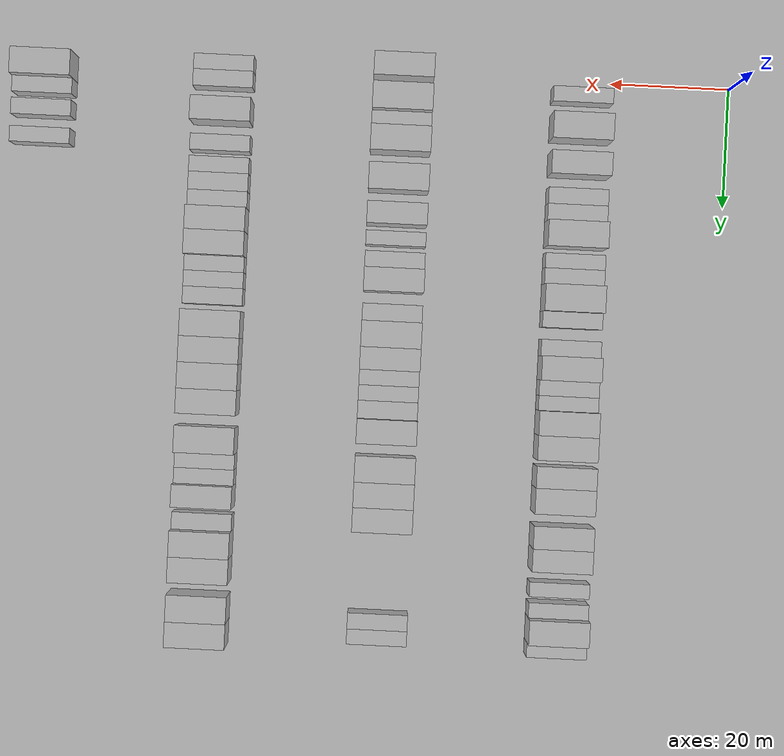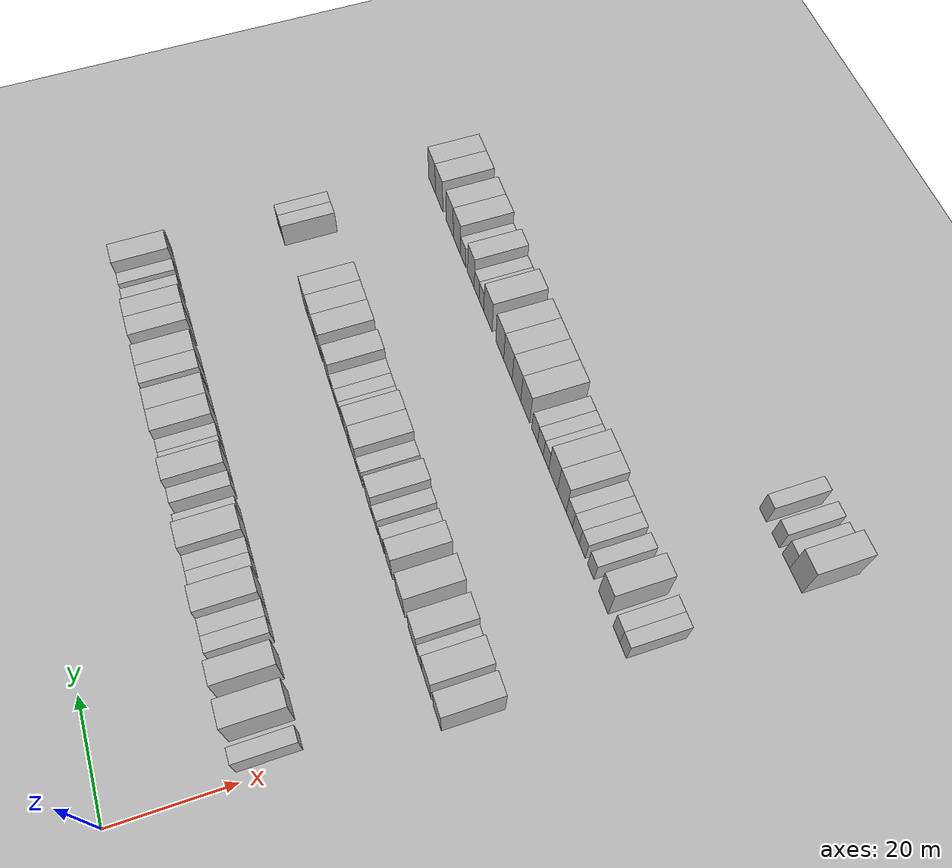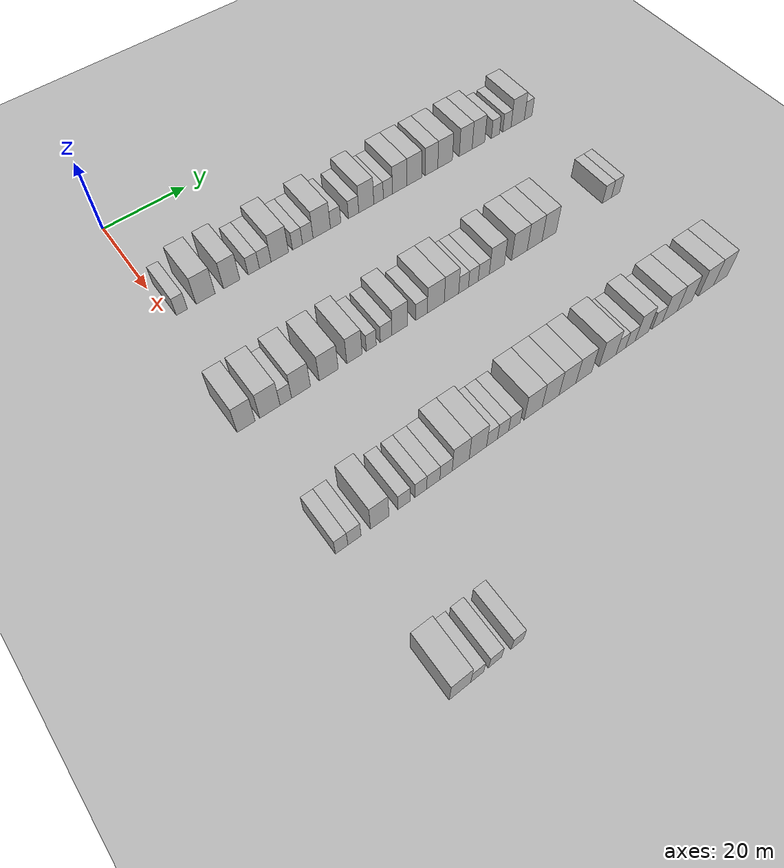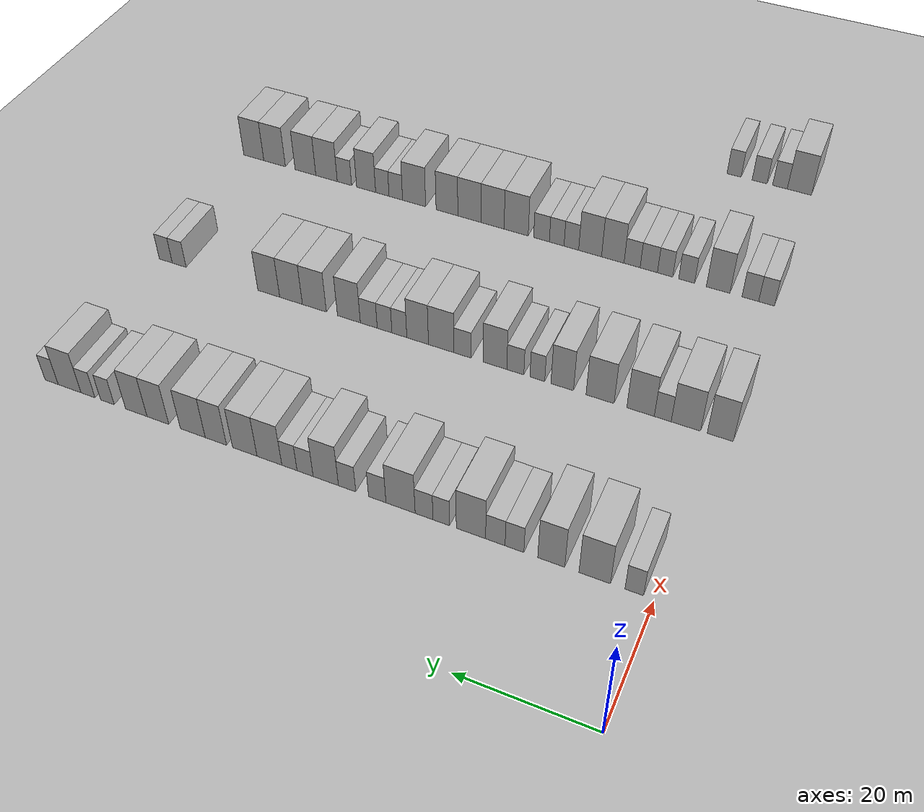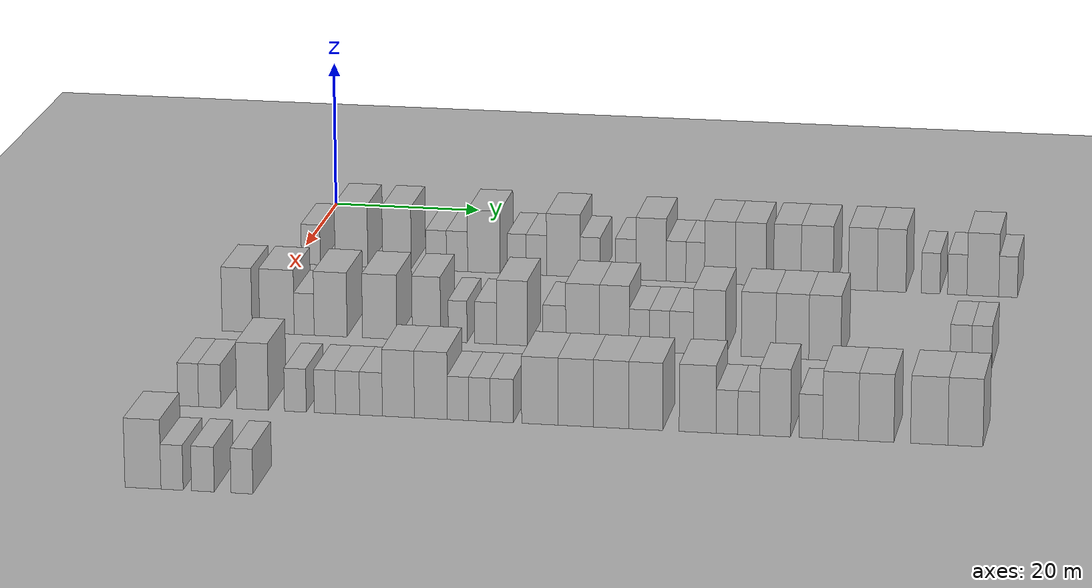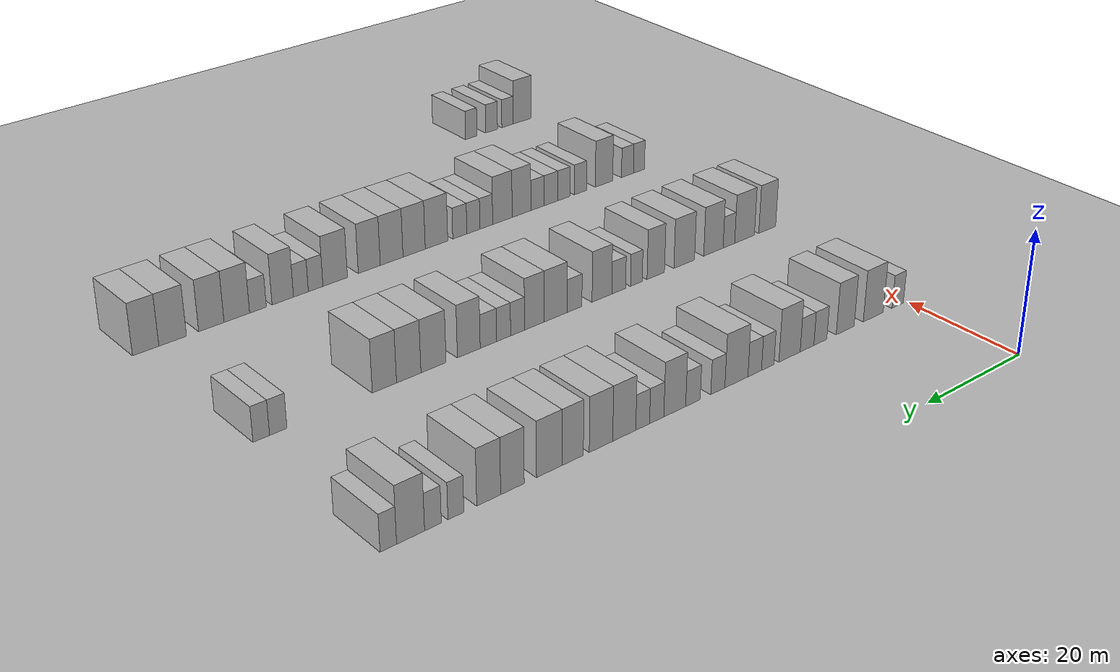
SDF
<sdf version="1.6">
 <world name="default">
  <include><name>ground_plane_1</name><uri>model://HANNAS_ground_plane</uri></include>
  <include>
   <name>ground_plane_2</name>
   <uri>model://HANNAS_ground_plane</uri>
   <pose>100 0 0  0 0 0</pose>
  </include>
  <model name="building_116">
   <static>1</static>
   <pose>25.0000 2.7691 0 0.000000 0.000000 0.000000</pose>
   <link name="link">
    <pose>0 0 3.00 0 0 0</pose>
    <collision name="collision"><geometry><box><size>10.0000 2.5528 6.0000</size></box></geometry></collision>
    <visual name="visual">
     <cast_shadows>0</cast_shadows>
     <geometry><box><size>10.0000 2.5528 6.0000</size></box></geometry>
     <material>
      <script>
       <uri>model://HANNAS_wall/materials/scripts</uri>
       <uri>model://HANNAS_wall/materials/textures</uri>
       <name>vrc/HANNAS_wall</name>
      </script>
     </material>
    </visual>
   </link>
  </model>
  <model name="building_117">
   <static>1</static>
   <pose>25.0000 8.2549 0 0.000000 0.000000 0.000000</pose>
   <link name="link">
    <pose>0 0 4.50 0 0 0</pose>
    <collision name="collision"><geometry><box><size>10.0000 4.4187 9.0000</size></box></geometry></collision>
    <visual name="visual">
     <cast_shadows>0</cast_shadows>
     <geometry><box><size>10.0000 4.4187 9.0000</size></box></geometry>
     <material>
      <script>
       <uri>model://HANNAS_wall/materials/scripts</uri>
       <uri>model://HANNAS_wall/materials/textures</uri>
       <name>vrc/HANNAS_wall</name>
      </script>
     </material>
    </visual>
   </link>
  </model>
  <model name="building_118">
   <static>1</static>
   <pose>25.0000 14.3963 0 0.000000 0.000000 0.000000</pose>
   <link name="link">
    <pose>0 0 4.50 0 0 0</pose>
    <collision name="collision"><geometry><box><size>10.0000 3.8641 9.0000</size></box></geometry></collision>
    <visual name="visual">
     <cast_shadows>0</cast_shadows>
     <geometry><box><size>10.0000 3.8641 9.0000</size></box></geometry>
     <material>
      <script>
       <uri>model://HANNAS_wall/materials/scripts</uri>
       <uri>model://HANNAS_wall/materials/textures</uri>
       <name>vrc/HANNAS_wall</name>
      </script>
     </material>
    </visual>
   </link>
  </model>
  <model name="building_119">
   <static>1</static>
   <pose>25.0000 19.6940 0 0.000000 0.000000 0.000000</pose>
   <link name="link">
    <pose>0 0 3.00 0 0 0</pose>
    <collision name="collision"><geometry><box><size>10.0000 2.7313 6.0000</size></box></geometry></collision>
    <visual name="visual">
     <cast_shadows>0</cast_shadows>
     <geometry><box><size>10.0000 2.7313 6.0000</size></box></geometry>
     <material>
      <script>
       <uri>model://HANNAS_wall/materials/scripts</uri>
       <uri>model://HANNAS_wall/materials/textures</uri>
       <name>vrc/HANNAS_wall</name>
      </script>
     </material>
    </visual>
   </link>
  </model>
  <model name="building_120">
   <static>1</static>
   <pose>25.0000 22.4867 0 0.000000 0.000000 0.000000</pose>
   <link name="link">
    <pose>0 0 3.00 0 0 0</pose>
    <collision name="collision"><geometry><box><size>10.0000 2.8542 6.0000</size></box></geometry></collision>
    <visual name="visual">
     <cast_shadows>0</cast_shadows>
     <geometry><box><size>10.0000 2.8542 6.0000</size></box></geometry>
     <material>
      <script>
       <uri>model://HANNAS_wall/materials/scripts</uri>
       <uri>model://HANNAS_wall/materials/textures</uri>
       <name>vrc/HANNAS_wall</name>
      </script>
     </material>
    </visual>
   </link>
  </model>
  <model name="building_121">
   <static>1</static>
   <pose>25.0000 26.0898 0 0.000000 0.000000 0.000000</pose>
   <link name="link">
    <pose>0 0 4.50 0 0 0</pose>
    <collision name="collision"><geometry><box><size>10.0000 4.3520 9.0000</size></box></geometry></collision>
    <visual name="visual">
     <cast_shadows>0</cast_shadows>
     <geometry><box><size>10.0000 4.3520 9.0000</size></box></geometry>
     <material>
      <script>
       <uri>model://HANNAS_wall/materials/scripts</uri>
       <uri>model://HANNAS_wall/materials/textures</uri>
       <name>vrc/HANNAS_wall</name>
      </script>
     </material>
    </visual>
   </link>
  </model>
  <model name="building_122">
   <static>1</static>
   <pose>25.0000 30.5175 0 0.000000 0.000000 0.000000</pose>
   <link name="link">
    <pose>0 0 3.00 0 0 0</pose>
    <collision name="collision"><geometry><box><size>10.0000 2.5034 6.0000</size></box></geometry></collision>
    <visual name="visual">
     <cast_shadows>0</cast_shadows>
     <geometry><box><size>10.0000 2.5034 6.0000</size></box></geometry>
     <material>
      <script>
       <uri>model://HANNAS_wall/materials/scripts</uri>
       <uri>model://HANNAS_wall/materials/textures</uri>
       <name>vrc/HANNAS_wall</name>
      </script>
     </material>
    </visual>
   </link>
  </model>
  <model name="building_123">
   <static>1</static>
   <pose>25.0000 33.1195 0 0.000000 0.000000 0.000000</pose>
   <link name="link">
    <pose>0 0 3.00 0 0 0</pose>
    <collision name="collision"><geometry><box><size>10.0000 2.7006 6.0000</size></box></geometry></collision>
    <visual name="visual">
     <cast_shadows>0</cast_shadows>
     <geometry><box><size>10.0000 2.7006 6.0000</size></box></geometry>
     <material>
      <script>
       <uri>model://HANNAS_wall/materials/scripts</uri>
       <uri>model://HANNAS_wall/materials/textures</uri>
       <name>vrc/HANNAS_wall</name>
      </script>
     </material>
    </visual>
   </link>
  </model>
  <model name="building_124">
   <static>1</static>
   <pose>25.0000 36.7142 0 0.000000 0.000000 0.000000</pose>
   <link name="link">
    <pose>0 0 4.50 0 0 0</pose>
    <collision name="collision"><geometry><box><size>10.0000 4.4888 9.0000</size></box></geometry></collision>
    <visual name="visual">
     <cast_shadows>0</cast_shadows>
     <geometry><box><size>10.0000 4.4888 9.0000</size></box></geometry>
     <material>
      <script>
       <uri>model://HANNAS_wall/materials/scripts</uri>
       <uri>model://HANNAS_wall/materials/textures</uri>
       <name>vrc/HANNAS_wall</name>
      </script>
     </material>
    </visual>
   </link>
  </model>
  <model name="building_125">
   <static>1</static>
   <pose>25.0000 40.3111 0 0.000000 0.000000 0.000000</pose>
   <link name="link">
    <pose>0 0 3.00 0 0 0</pose>
    <collision name="collision"><geometry><box><size>10.0000 2.7050 6.0000</size></box></geometry></collision>
    <visual name="visual">
     <cast_shadows>0</cast_shadows>
     <geometry><box><size>10.0000 2.7050 6.0000</size></box></geometry>
     <material>
      <script>
       <uri>model://HANNAS_wall/materials/scripts</uri>
       <uri>model://HANNAS_wall/materials/textures</uri>
       <name>vrc/HANNAS_wall</name>
      </script>
     </material>
    </visual>
   </link>
  </model>
  <model name="building_126">
   <static>1</static>
   <pose>25.0000 45.0273 0 0.000000 0.000000 0.000000</pose>
   <link name="link">
    <pose>0 0 3.00 0 0 0</pose>
    <collision name="collision"><geometry><box><size>10.0000 2.7273 6.0000</size></box></geometry></collision>
    <visual name="visual">
     <cast_shadows>0</cast_shadows>
     <geometry><box><size>10.0000 2.7273 6.0000</size></box></geometry>
     <material>
      <script>
       <uri>model://HANNAS_wall/materials/scripts</uri>
       <uri>model://HANNAS_wall/materials/textures</uri>
       <name>vrc/HANNAS_wall</name>
      </script>
     </material>
    </visual>
   </link>
  </model>
  <model name="building_127">
   <static>1</static>
   <pose>25.0000 48.4106 0 0.000000 0.000000 0.000000</pose>
   <link name="link">
    <pose>0 0 4.50 0 0 0</pose>
    <collision name="collision"><geometry><box><size>10.0000 4.0393 9.0000</size></box></geometry></collision>
    <visual name="visual">
     <cast_shadows>0</cast_shadows>
     <geometry><box><size>10.0000 4.0393 9.0000</size></box></geometry>
     <material>
      <script>
       <uri>model://HANNAS_wall/materials/scripts</uri>
       <uri>model://HANNAS_wall/materials/textures</uri>
       <name>vrc/HANNAS_wall</name>
      </script>
     </material>
    </visual>
   </link>
  </model>
  <model name="building_128">
   <static>1</static>
   <pose>25.0000 51.7241 0 0.000000 0.000000 0.000000</pose>
   <link name="link">
    <pose>0 0 3.00 0 0 0</pose>
    <collision name="collision"><geometry><box><size>10.0000 2.5877 6.0000</size></box></geometry></collision>
    <visual name="visual">
     <cast_shadows>0</cast_shadows>
     <geometry><box><size>10.0000 2.5877 6.0000</size></box></geometry>
     <material>
      <script>
       <uri>model://HANNAS_wall/materials/scripts</uri>
       <uri>model://HANNAS_wall/materials/textures</uri>
       <name>vrc/HANNAS_wall</name>
      </script>
     </material>
    </visual>
   </link>
  </model>
  <model name="building_129">
   <static>1</static>
   <pose>25.0000 54.2545 0 0.000000 0.000000 0.000000</pose>
   <link name="link">
    <pose>0 0 3.00 0 0 0</pose>
    <collision name="collision"><geometry><box><size>10.0000 2.4733 6.0000</size></box></geometry></collision>
    <visual name="visual">
     <cast_shadows>0</cast_shadows>
     <geometry><box><size>10.0000 2.4733 6.0000</size></box></geometry>
     <material>
      <script>
       <uri>model://HANNAS_wall/materials/scripts</uri>
       <uri>model://HANNAS_wall/materials/textures</uri>
       <name>vrc/HANNAS_wall</name>
      </script>
     </material>
    </visual>
   </link>
  </model>
  <model name="building_130">
   <static>1</static>
   <pose>25.0000 57.5274 0 0.000000 0.000000 0.000000</pose>
   <link name="link">
    <pose>0 0 4.50 0 0 0</pose>
    <collision name="collision"><geometry><box><size>10.0000 4.0725 9.0000</size></box></geometry></collision>
    <visual name="visual">
     <cast_shadows>0</cast_shadows>
     <geometry><box><size>10.0000 4.0725 9.0000</size></box></geometry>
     <material>
      <script>
       <uri>model://HANNAS_wall/materials/scripts</uri>
       <uri>model://HANNAS_wall/materials/textures</uri>
       <name>vrc/HANNAS_wall</name>
      </script>
     </material>
    </visual>
   </link>
  </model>
  <model name="building_131">
   <static>1</static>
   <pose>25.0000 61.5958 0 0.000000 0.000000 0.000000</pose>
   <link name="link">
    <pose>0 0 4.50 0 0 0</pose>
    <collision name="collision"><geometry><box><size>10.0000 4.0643 9.0000</size></box></geometry></collision>
    <visual name="visual">
     <cast_shadows>0</cast_shadows>
     <geometry><box><size>10.0000 4.0643 9.0000</size></box></geometry>
     <material>
      <script>
       <uri>model://HANNAS_wall/materials/scripts</uri>
       <uri>model://HANNAS_wall/materials/textures</uri>
       <name>vrc/HANNAS_wall</name>
      </script>
     </material>
    </visual>
   </link>
  </model>
  <model name="building_132">
   <static>1</static>
   <pose>25.0000 66.4297 0 0.000000 0.000000 0.000000</pose>
   <link name="link">
    <pose>0 0 4.50 0 0 0</pose>
    <collision name="collision"><geometry><box><size>10.0000 3.6033 9.0000</size></box></geometry></collision>
    <visual name="visual">
     <cast_shadows>0</cast_shadows>
     <geometry><box><size>10.0000 3.6033 9.0000</size></box></geometry>
     <material>
      <script>
       <uri>model://HANNAS_wall/materials/scripts</uri>
       <uri>model://HANNAS_wall/materials/textures</uri>
       <name>vrc/HANNAS_wall</name>
      </script>
     </material>
    </visual>
   </link>
  </model>
  <model name="building_133">
   <static>1</static>
   <pose>25.0000 70.3475 0 0.000000 0.000000 0.000000</pose>
   <link name="link">
    <pose>0 0 4.50 0 0 0</pose>
    <collision name="collision"><geometry><box><size>10.0000 4.2324 9.0000</size></box></geometry></collision>
    <visual name="visual">
     <cast_shadows>0</cast_shadows>
     <geometry><box><size>10.0000 4.2324 9.0000</size></box></geometry>
     <material>
      <script>
       <uri>model://HANNAS_wall/materials/scripts</uri>
       <uri>model://HANNAS_wall/materials/textures</uri>
       <name>vrc/HANNAS_wall</name>
      </script>
     </material>
    </visual>
   </link>
  </model>
  <model name="building_134">
   <static>1</static>
   <pose>25.0000 76.3587 0 0.000000 0.000000 0.000000</pose>
   <link name="link">
    <pose>0 0 4.50 0 0 0</pose>
    <collision name="collision"><geometry><box><size>10.0000 3.7901 9.0000</size></box></geometry></collision>
    <visual name="visual">
     <cast_shadows>0</cast_shadows>
     <geometry><box><size>10.0000 3.7901 9.0000</size></box></geometry>
     <material>
      <script>
       <uri>model://HANNAS_wall/materials/scripts</uri>
       <uri>model://HANNAS_wall/materials/textures</uri>
       <name>vrc/HANNAS_wall</name>
      </script>
     </material>
    </visual>
   </link>
  </model>
  <model name="building_135">
   <static>1</static>
   <pose>25.0000 80.1382 0 0.000000 0.000000 0.000000</pose>
   <link name="link">
    <pose>0 0 4.50 0 0 0</pose>
    <collision name="collision"><geometry><box><size>10.0000 3.7689 9.0000</size></box></geometry></collision>
    <visual name="visual">
     <cast_shadows>0</cast_shadows>
     <geometry><box><size>10.0000 3.7689 9.0000</size></box></geometry>
     <material>
      <script>
       <uri>model://HANNAS_wall/materials/scripts</uri>
       <uri>model://HANNAS_wall/materials/textures</uri>
       <name>vrc/HANNAS_wall</name>
      </script>
     </material>
    </visual>
   </link>
  </model>
  <model name="building_136">
   <static>1</static>
   <pose>25.0000 85.2447 0 0.000000 0.000000 0.000000</pose>
   <link name="link">
    <pose>0 0 3.00 0 0 0</pose>
    <collision name="collision"><geometry><box><size>10.0000 2.4442 6.0000</size></box></geometry></collision>
    <visual name="visual">
     <cast_shadows>0</cast_shadows>
     <geometry><box><size>10.0000 2.4442 6.0000</size></box></geometry>
     <material>
      <script>
       <uri>model://HANNAS_wall/materials/scripts</uri>
       <uri>model://HANNAS_wall/materials/textures</uri>
       <name>vrc/HANNAS_wall</name>
      </script>
     </material>
    </visual>
   </link>
  </model>
  <model name="building_137">
   <static>1</static>
   <pose>25.0000 88.7309 0 0.000000 0.000000 0.000000</pose>
   <link name="link">
    <pose>0 0 3.00 0 0 0</pose>
    <collision name="collision"><geometry><box><size>10.0000 2.5282 6.0000</size></box></geometry></collision>
    <visual name="visual">
     <cast_shadows>0</cast_shadows>
     <geometry><box><size>10.0000 2.5282 6.0000</size></box></geometry>
     <material>
      <script>
       <uri>model://HANNAS_wall/materials/scripts</uri>
       <uri>model://HANNAS_wall/materials/textures</uri>
       <name>vrc/HANNAS_wall</name>
      </script>
     </material>
    </visual>
   </link>
  </model>
  <model name="building_138">
   <static>1</static>
   <pose>25.0000 92.0677 0 0.000000 0.000000 0.000000</pose>
   <link name="link">
    <pose>0 0 4.50 0 0 0</pose>
    <collision name="collision"><geometry><box><size>10.0000 4.1453 9.0000</size></box></geometry></collision>
    <visual name="visual">
     <cast_shadows>0</cast_shadows>
     <geometry><box><size>10.0000 4.1453 9.0000</size></box></geometry>
     <material>
      <script>
       <uri>model://HANNAS_wall/materials/scripts</uri>
       <uri>model://HANNAS_wall/materials/textures</uri>
       <name>vrc/HANNAS_wall</name>
      </script>
     </material>
    </visual>
   </link>
  </model>
  <model name="building_139">
   <static>1</static>
   <pose>25.0000 95.3452 0 0.000000 0.000000 0.000000</pose>
   <link name="link">
    <pose>0 0 3.00 0 0 0</pose>
    <collision name="collision"><geometry><box><size>10.0000 2.4097 6.0000</size></box></geometry></collision>
    <visual name="visual">
     <cast_shadows>0</cast_shadows>
     <geometry><box><size>10.0000 2.4097 6.0000</size></box></geometry>
     <material>
      <script>
       <uri>model://HANNAS_wall/materials/scripts</uri>
       <uri>model://HANNAS_wall/materials/textures</uri>
       <name>vrc/HANNAS_wall</name>
      </script>
     </material>
    </visual>
   </link>
  </model>
  <model name="building_352">
   <static>1</static>
   <pose>55.0000 -0.4219 0 0.000000 0.000000 0.000000</pose>
   <link name="link">
    <pose>0 0 4.50 0 0 0</pose>
    <collision name="collision"><geometry><box><size>10.0000 3.8989 9.0000</size></box></geometry></collision>
    <visual name="visual">
     <cast_shadows>0</cast_shadows>
     <geometry><box><size>10.0000 3.8989 9.0000</size></box></geometry>
     <material>
      <script>
       <uri>model://HANNAS_wall/materials/scripts</uri>
       <uri>model://HANNAS_wall/materials/textures</uri>
       <name>vrc/HANNAS_wall</name>
      </script>
     </material>
    </visual>
   </link>
  </model>
  <model name="building_353">
   <static>1</static>
   <pose>55.0000 4.7651 0 0.000000 0.000000 0.000000</pose>
   <link name="link">
    <pose>0 0 4.50 0 0 0</pose>
    <collision name="collision"><geometry><box><size>10.0000 4.4752 9.0000</size></box></geometry></collision>
    <visual name="visual">
     <cast_shadows>0</cast_shadows>
     <geometry><box><size>10.0000 4.4752 9.0000</size></box></geometry>
     <material>
      <script>
       <uri>model://HANNAS_wall/materials/scripts</uri>
       <uri>model://HANNAS_wall/materials/textures</uri>
       <name>vrc/HANNAS_wall</name>
      </script>
     </material>
    </visual>
   </link>
  </model>
  <model name="building_354">
   <static>1</static>
   <pose>55.0000 8.2988 0 0.000000 0.000000 0.000000</pose>
   <link name="link">
    <pose>0 0 3.00 0 0 0</pose>
    <collision name="collision"><geometry><box><size>10.0000 2.5921 6.0000</size></box></geometry></collision>
    <visual name="visual">
     <cast_shadows>0</cast_shadows>
     <geometry><box><size>10.0000 2.5921 6.0000</size></box></geometry>
     <material>
      <script>
       <uri>model://HANNAS_wall/materials/scripts</uri>
       <uri>model://HANNAS_wall/materials/textures</uri>
       <name>vrc/HANNAS_wall</name>
      </script>
     </material>
    </visual>
   </link>
  </model>
  <model name="building_355">
   <static>1</static>
   <pose>55.0000 11.7295 0 0.000000 0.000000 0.000000</pose>
   <link name="link">
    <pose>0 0 4.50 0 0 0</pose>
    <collision name="collision"><geometry><box><size>10.0000 4.2692 9.0000</size></box></geometry></collision>
    <visual name="visual">
     <cast_shadows>0</cast_shadows>
     <geometry><box><size>10.0000 4.2692 9.0000</size></box></geometry>
     <material>
      <script>
       <uri>model://HANNAS_wall/materials/scripts</uri>
       <uri>model://HANNAS_wall/materials/textures</uri>
       <name>vrc/HANNAS_wall</name>
      </script>
     </material>
    </visual>
   </link>
  </model>
  <model name="building_356">
   <static>1</static>
   <pose>55.0000 18.0799 0 0.000000 0.000000 0.000000</pose>
   <link name="link">
    <pose>0 0 4.50 0 0 0</pose>
    <collision name="collision"><geometry><box><size>10.0000 4.4316 9.0000</size></box></geometry></collision>
    <visual name="visual">
     <cast_shadows>0</cast_shadows>
     <geometry><box><size>10.0000 4.4316 9.0000</size></box></geometry>
     <material>
      <script>
       <uri>model://HANNAS_wall/materials/scripts</uri>
       <uri>model://HANNAS_wall/materials/textures</uri>
       <name>vrc/HANNAS_wall</name>
      </script>
     </material>
    </visual>
   </link>
  </model>
  <model name="building_357">
   <static>1</static>
   <pose>55.0000 24.1187 0 0.000000 0.000000 0.000000</pose>
   <link name="link">
    <pose>0 0 4.50 0 0 0</pose>
    <collision name="collision"><geometry><box><size>10.0000 3.6459 9.0000</size></box></geometry></collision>
    <visual name="visual">
     <cast_shadows>0</cast_shadows>
     <geometry><box><size>10.0000 3.6459 9.0000</size></box></geometry>
     <material>
      <script>
       <uri>model://HANNAS_wall/materials/scripts</uri>
       <uri>model://HANNAS_wall/materials/textures</uri>
       <name>vrc/HANNAS_wall</name>
      </script>
     </material>
    </visual>
   </link>
  </model>
  <model name="building_358">
   <static>1</static>
   <pose>55.0000 28.1449 0 0.000000 0.000000 0.000000</pose>
   <link name="link">
    <pose>0 0 3.00 0 0 0</pose>
    <collision name="collision"><geometry><box><size>10.0000 2.4065 6.0000</size></box></geometry></collision>
    <visual name="visual">
     <cast_shadows>0</cast_shadows>
     <geometry><box><size>10.0000 2.4065 6.0000</size></box></geometry>
     <material>
      <script>
       <uri>model://HANNAS_wall/materials/scripts</uri>
       <uri>model://HANNAS_wall/materials/textures</uri>
       <name>vrc/HANNAS_wall</name>
      </script>
     </material>
    </visual>
   </link>
  </model>
  <model name="building_359">
   <static>1</static>
   <pose>55.0000 31.7547 0 0.000000 0.000000 0.000000</pose>
   <link name="link">
    <pose>0 0 3.00 0 0 0</pose>
    <collision name="collision"><geometry><box><size>10.0000 2.8130 6.0000</size></box></geometry></collision>
    <visual name="visual">
     <cast_shadows>0</cast_shadows>
     <geometry><box><size>10.0000 2.8130 6.0000</size></box></geometry>
     <material>
      <script>
       <uri>model://HANNAS_wall/materials/scripts</uri>
       <uri>model://HANNAS_wall/materials/textures</uri>
       <name>vrc/HANNAS_wall</name>
      </script>
     </material>
    </visual>
   </link>
  </model>
  <model name="building_360">
   <static>1</static>
   <pose>55.0000 35.1279 0 0.000000 0.000000 0.000000</pose>
   <link name="link">
    <pose>0 0 4.50 0 0 0</pose>
    <collision name="collision"><geometry><box><size>10.0000 3.9332 9.0000</size></box></geometry></collision>
    <visual name="visual">
     <cast_shadows>0</cast_shadows>
     <geometry><box><size>10.0000 3.9332 9.0000</size></box></geometry>
     <material>
      <script>
       <uri>model://HANNAS_wall/materials/scripts</uri>
       <uri>model://HANNAS_wall/materials/textures</uri>
       <name>vrc/HANNAS_wall</name>
      </script>
     </material>
    </visual>
   </link>
  </model>
  <model name="building_361">
   <static>1</static>
   <pose>55.0000 40.5512 0 0.000000 0.000000 0.000000</pose>
   <link name="link">
    <pose>0 0 3.00 0 0 0</pose>
    <collision name="collision"><geometry><box><size>10.0000 2.9135 6.0000</size></box></geometry></collision>
    <visual name="visual">
     <cast_shadows>0</cast_shadows>
     <geometry><box><size>10.0000 2.9135 6.0000</size></box></geometry>
     <material>
      <script>
       <uri>model://HANNAS_wall/materials/scripts</uri>
       <uri>model://HANNAS_wall/materials/textures</uri>
       <name>vrc/HANNAS_wall</name>
      </script>
     </material>
    </visual>
   </link>
  </model>
  <model name="building_362">
   <static>1</static>
   <pose>55.0000 44.1764 0 0.000000 0.000000 0.000000</pose>
   <link name="link">
    <pose>0 0 4.50 0 0 0</pose>
    <collision name="collision"><geometry><box><size>10.0000 4.3368 9.0000</size></box></geometry></collision>
    <visual name="visual">
     <cast_shadows>0</cast_shadows>
     <geometry><box><size>10.0000 4.3368 9.0000</size></box></geometry>
     <material>
      <script>
       <uri>model://HANNAS_wall/materials/scripts</uri>
       <uri>model://HANNAS_wall/materials/textures</uri>
       <name>vrc/HANNAS_wall</name>
      </script>
     </material>
    </visual>
   </link>
  </model>
  <model name="building_363">
   <static>1</static>
   <pose>55.0000 48.2190 0 0.000000 0.000000 0.000000</pose>
   <link name="link">
    <pose>0 0 4.50 0 0 0</pose>
    <collision name="collision"><geometry><box><size>10.0000 3.7484 9.0000</size></box></geometry></collision>
    <visual name="visual">
     <cast_shadows>0</cast_shadows>
     <geometry><box><size>10.0000 3.7484 9.0000</size></box></geometry>
     <material>
      <script>
       <uri>model://HANNAS_wall/materials/scripts</uri>
       <uri>model://HANNAS_wall/materials/textures</uri>
       <name>vrc/HANNAS_wall</name>
      </script>
     </material>
    </visual>
   </link>
  </model>
  <model name="building_364">
   <static>1</static>
   <pose>55.0000 51.3881 0 0.000000 0.000000 0.000000</pose>
   <link name="link">
    <pose>0 0 3.00 0 0 0</pose>
    <collision name="collision"><geometry><box><size>10.0000 2.5898 6.0000</size></box></geometry></collision>
    <visual name="visual">
     <cast_shadows>0</cast_shadows>
     <geometry><box><size>10.0000 2.5898 6.0000</size></box></geometry>
     <material>
      <script>
       <uri>model://HANNAS_wall/materials/scripts</uri>
       <uri>model://HANNAS_wall/materials/textures</uri>
       <name>vrc/HANNAS_wall</name>
      </script>
     </material>
    </visual>
   </link>
  </model>
  <model name="building_365">
   <static>1</static>
   <pose>55.0000 53.9721 0 0.000000 0.000000 0.000000</pose>
   <link name="link">
    <pose>0 0 3.00 0 0 0</pose>
    <collision name="collision"><geometry><box><size>10.0000 2.5783 6.0000</size></box></geometry></collision>
    <visual name="visual">
     <cast_shadows>0</cast_shadows>
     <geometry><box><size>10.0000 2.5783 6.0000</size></box></geometry>
     <material>
      <script>
       <uri>model://HANNAS_wall/materials/scripts</uri>
       <uri>model://HANNAS_wall/materials/textures</uri>
       <name>vrc/HANNAS_wall</name>
      </script>
     </material>
    </visual>
   </link>
  </model>
  <model name="building_366">
   <static>1</static>
   <pose>55.0000 56.7555 0 0.000000 0.000000 0.000000</pose>
   <link name="link">
    <pose>0 0 3.00 0 0 0</pose>
    <collision name="collision"><geometry><box><size>10.0000 2.9885 6.0000</size></box></geometry></collision>
    <visual name="visual">
     <cast_shadows>0</cast_shadows>
     <geometry><box><size>10.0000 2.9885 6.0000</size></box></geometry>
     <material>
      <script>
       <uri>model://HANNAS_wall/materials/scripts</uri>
       <uri>model://HANNAS_wall/materials/textures</uri>
       <name>vrc/HANNAS_wall</name>
      </script>
     </material>
    </visual>
   </link>
  </model>
  <model name="building_367">
   <static>1</static>
   <pose>55.0000 60.2908 0 0.000000 0.000000 0.000000</pose>
   <link name="link">
    <pose>0 0 4.50 0 0 0</pose>
    <collision name="collision"><geometry><box><size>10.0000 4.0819 9.0000</size></box></geometry></collision>
    <visual name="visual">
     <cast_shadows>0</cast_shadows>
     <geometry><box><size>10.0000 4.0819 9.0000</size></box></geometry>
     <material>
      <script>
       <uri>model://HANNAS_wall/materials/scripts</uri>
       <uri>model://HANNAS_wall/materials/textures</uri>
       <name>vrc/HANNAS_wall</name>
      </script>
     </material>
    </visual>
   </link>
  </model>
  <model name="building_368">
   <static>1</static>
   <pose>55.0000 66.5134 0 0.000000 0.000000 0.000000</pose>
   <link name="link">
    <pose>0 0 4.50 0 0 0</pose>
    <collision name="collision"><geometry><box><size>10.0000 4.3634 9.0000</size></box></geometry></collision>
    <visual name="visual">
     <cast_shadows>0</cast_shadows>
     <geometry><box><size>10.0000 4.3634 9.0000</size></box></geometry>
     <material>
      <script>
       <uri>model://HANNAS_wall/materials/scripts</uri>
       <uri>model://HANNAS_wall/materials/textures</uri>
       <name>vrc/HANNAS_wall</name>
      </script>
     </material>
    </visual>
   </link>
  </model>
  <model name="building_369">
   <static>1</static>
   <pose>55.0000 70.7805 0 0.000000 0.000000 0.000000</pose>
   <link name="link">
    <pose>0 0 4.50 0 0 0</pose>
    <collision name="collision"><geometry><box><size>10.0000 4.1707 9.0000</size></box></geometry></collision>
    <visual name="visual">
     <cast_shadows>0</cast_shadows>
     <geometry><box><size>10.0000 4.1707 9.0000</size></box></geometry>
     <material>
      <script>
       <uri>model://HANNAS_wall/materials/scripts</uri>
       <uri>model://HANNAS_wall/materials/textures</uri>
       <name>vrc/HANNAS_wall</name>
      </script>
     </material>
    </visual>
   </link>
  </model>
  <model name="building_370">
   <static>1</static>
   <pose>55.0000 74.8932 0 0.000000 0.000000 0.000000</pose>
   <link name="link">
    <pose>0 0 4.50 0 0 0</pose>
    <collision name="collision"><geometry><box><size>10.0000 4.0549 9.0000</size></box></geometry></collision>
    <visual name="visual">
     <cast_shadows>0</cast_shadows>
     <geometry><box><size>10.0000 4.0549 9.0000</size></box></geometry>
     <material>
      <script>
       <uri>model://HANNAS_wall/materials/scripts</uri>
       <uri>model://HANNAS_wall/materials/textures</uri>
       <name>vrc/HANNAS_wall</name>
      </script>
     </material>
    </visual>
   </link>
  </model>
  <model name="building_371">
   <static>1</static>
   <pose>55.0000 91.9477 0 0.000000 0.000000 0.000000</pose>
   <link name="link">
    <pose>0 0 3.00 0 0 0</pose>
    <collision name="collision"><geometry><box><size>10.0000 2.6847 6.0000</size></box></geometry></collision>
    <visual name="visual">
     <cast_shadows>0</cast_shadows>
     <geometry><box><size>10.0000 2.6847 6.0000</size></box></geometry>
     <material>
      <script>
       <uri>model://HANNAS_wall/materials/scripts</uri>
       <uri>model://HANNAS_wall/materials/textures</uri>
       <name>vrc/HANNAS_wall</name>
      </script>
     </material>
    </visual>
   </link>
  </model>
  <model name="building_372">
   <static>1</static>
   <pose>55.0000 94.5543 0 0.000000 0.000000 0.000000</pose>
   <link name="link">
    <pose>0 0 3.00 0 0 0</pose>
    <collision name="collision"><geometry><box><size>10.0000 2.5285 6.0000</size></box></geometry></collision>
    <visual name="visual">
     <cast_shadows>0</cast_shadows>
     <geometry><box><size>10.0000 2.5285 6.0000</size></box></geometry>
     <material>
      <script>
       <uri>model://HANNAS_wall/materials/scripts</uri>
       <uri>model://HANNAS_wall/materials/textures</uri>
       <name>vrc/HANNAS_wall</name>
      </script>
     </material>
    </visual>
   </link>
  </model>
  <model name="building_559">
   <static>1</static>
   <pose>85.0000 0.3078 0 0.000000 0.000000 0.000000</pose>
   <link name="link">
    <pose>0 0 3.00 0 0 0</pose>
    <collision name="collision"><geometry><box><size>10.0000 2.5840 6.0000</size></box></geometry></collision>
    <visual name="visual">
     <cast_shadows>0</cast_shadows>
     <geometry><box><size>10.0000 2.5840 6.0000</size></box></geometry>
     <material>
      <script>
       <uri>model://HANNAS_wall/materials/scripts</uri>
       <uri>model://HANNAS_wall/materials/textures</uri>
       <name>vrc/HANNAS_wall</name>
      </script>
     </material>
    </visual>
   </link>
  </model>
  <model name="building_560">
   <static>1</static>
   <pose>85.0000 2.9794 0 0.000000 0.000000 0.000000</pose>
   <link name="link">
    <pose>0 0 3.00 0 0 0</pose>
    <collision name="collision"><geometry><box><size>10.0000 2.7592 6.0000</size></box></geometry></collision>
    <visual name="visual">
     <cast_shadows>0</cast_shadows>
     <geometry><box><size>10.0000 2.7592 6.0000</size></box></geometry>
     <material>
      <script>
       <uri>model://HANNAS_wall/materials/scripts</uri>
       <uri>model://HANNAS_wall/materials/textures</uri>
       <name>vrc/HANNAS_wall</name>
      </script>
     </material>
    </visual>
   </link>
  </model>
  <model name="building_561">
   <static>1</static>
   <pose>85.0000 8.3311 0 0.000000 0.000000 0.000000</pose>
   <link name="link">
    <pose>0 0 4.50 0 0 0</pose>
    <collision name="collision"><geometry><box><size>10.0000 3.9442 9.0000</size></box></geometry></collision>
    <visual name="visual">
     <cast_shadows>0</cast_shadows>
     <geometry><box><size>10.0000 3.9442 9.0000</size></box></geometry>
     <material>
      <script>
       <uri>model://HANNAS_wall/materials/scripts</uri>
       <uri>model://HANNAS_wall/materials/textures</uri>
       <name>vrc/HANNAS_wall</name>
      </script>
     </material>
    </visual>
   </link>
  </model>
  <model name="building_562">
   <static>1</static>
   <pose>85.0000 13.6527 0 0.000000 0.000000 0.000000</pose>
   <link name="link">
    <pose>0 0 3.00 0 0 0</pose>
    <collision name="collision"><geometry><box><size>10.0000 2.6989 6.0000</size></box></geometry></collision>
    <visual name="visual">
     <cast_shadows>0</cast_shadows>
     <geometry><box><size>10.0000 2.6989 6.0000</size></box></geometry>
     <material>
      <script>
       <uri>model://HANNAS_wall/materials/scripts</uri>
       <uri>model://HANNAS_wall/materials/textures</uri>
       <name>vrc/HANNAS_wall</name>
      </script>
     </material>
    </visual>
   </link>
  </model>
  <model name="building_563">
   <static>1</static>
   <pose>85.0000 17.3176 0 0.000000 0.000000 0.000000</pose>
   <link name="link">
    <pose>0 0 3.00 0 0 0</pose>
    <collision name="collision"><geometry><box><size>10.0000 2.6310 6.0000</size></box></geometry></collision>
    <visual name="visual">
     <cast_shadows>0</cast_shadows>
     <geometry><box><size>10.0000 2.6310 6.0000</size></box></geometry>
     <material>
      <script>
       <uri>model://HANNAS_wall/materials/scripts</uri>
       <uri>model://HANNAS_wall/materials/textures</uri>
       <name>vrc/HANNAS_wall</name>
      </script>
     </material>
    </visual>
   </link>
  </model>
  <model name="building_564">
   <static>1</static>
   <pose>85.0000 20.1263 0 0.000000 0.000000 0.000000</pose>
   <link name="link">
    <pose>0 0 3.00 0 0 0</pose>
    <collision name="collision"><geometry><box><size>10.0000 2.9863 6.0000</size></box></geometry></collision>
    <visual name="visual">
     <cast_shadows>0</cast_shadows>
     <geometry><box><size>10.0000 2.9863 6.0000</size></box></geometry>
     <material>
      <script>
       <uri>model://HANNAS_wall/materials/scripts</uri>
       <uri>model://HANNAS_wall/materials/textures</uri>
       <name>vrc/HANNAS_wall</name>
      </script>
     </material>
    </visual>
   </link>
  </model>
  <model name="building_565">
   <static>1</static>
   <pose>85.0000 23.0240 0 0.000000 0.000000 0.000000</pose>
   <link name="link">
    <pose>0 0 3.00 0 0 0</pose>
    <collision name="collision"><geometry><box><size>10.0000 2.8092 6.0000</size></box></geometry></collision>
    <visual name="visual">
     <cast_shadows>0</cast_shadows>
     <geometry><box><size>10.0000 2.8092 6.0000</size></box></geometry>
     <material>
      <script>
       <uri>model://HANNAS_wall/materials/scripts</uri>
       <uri>model://HANNAS_wall/materials/textures</uri>
       <name>vrc/HANNAS_wall</name>
      </script>
     </material>
    </visual>
   </link>
  </model>
  <model name="building_566">
   <static>1</static>
   <pose>85.0000 26.4054 0 0.000000 0.000000 0.000000</pose>
   <link name="link">
    <pose>0 0 4.50 0 0 0</pose>
    <collision name="collision"><geometry><box><size>10.0000 3.9537 9.0000</size></box></geometry></collision>
    <visual name="visual">
     <cast_shadows>0</cast_shadows>
     <geometry><box><size>10.0000 3.9537 9.0000</size></box></geometry>
     <material>
      <script>
       <uri>model://HANNAS_wall/materials/scripts</uri>
       <uri>model://HANNAS_wall/materials/textures</uri>
       <name>vrc/HANNAS_wall</name>
      </script>
     </material>
    </visual>
   </link>
  </model>
  <model name="building_567">
   <static>1</static>
   <pose>85.0000 30.4142 0 0.000000 0.000000 0.000000</pose>
   <link name="link">
    <pose>0 0 4.50 0 0 0</pose>
    <collision name="collision"><geometry><box><size>10.0000 4.0638 9.0000</size></box></geometry></collision>
    <visual name="visual">
     <cast_shadows>0</cast_shadows>
     <geometry><box><size>10.0000 4.0638 9.0000</size></box></geometry>
     <material>
      <script>
       <uri>model://HANNAS_wall/materials/scripts</uri>
       <uri>model://HANNAS_wall/materials/textures</uri>
       <name>vrc/HANNAS_wall</name>
      </script>
     </material>
    </visual>
   </link>
  </model>
  <model name="building_568">
   <static>1</static>
   <pose>85.0000 33.7584 0 0.000000 0.000000 0.000000</pose>
   <link name="link">
    <pose>0 0 3.00 0 0 0</pose>
    <collision name="collision"><geometry><box><size>10.0000 2.6246 6.0000</size></box></geometry></collision>
    <visual name="visual">
     <cast_shadows>0</cast_shadows>
     <geometry><box><size>10.0000 2.6246 6.0000</size></box></geometry>
     <material>
      <script>
       <uri>model://HANNAS_wall/materials/scripts</uri>
       <uri>model://HANNAS_wall/materials/textures</uri>
       <name>vrc/HANNAS_wall</name>
      </script>
     </material>
    </visual>
   </link>
  </model>
  <model name="building_569">
   <static>1</static>
   <pose>85.0000 36.3983 0 0.000000 0.000000 0.000000</pose>
   <link name="link">
    <pose>0 0 3.00 0 0 0</pose>
    <collision name="collision"><geometry><box><size>10.0000 2.6551 6.0000</size></box></geometry></collision>
    <visual name="visual">
     <cast_shadows>0</cast_shadows>
     <geometry><box><size>10.0000 2.6551 6.0000</size></box></geometry>
     <material>
      <script>
       <uri>model://HANNAS_wall/materials/scripts</uri>
       <uri>model://HANNAS_wall/materials/textures</uri>
       <name>vrc/HANNAS_wall</name>
      </script>
     </material>
    </visual>
   </link>
  </model>
  <model name="building_570">
   <static>1</static>
   <pose>85.0000 39.1481 0 0.000000 0.000000 0.000000</pose>
   <link name="link">
    <pose>0 0 3.00 0 0 0</pose>
    <collision name="collision"><geometry><box><size>10.0000 2.8445 6.0000</size></box></geometry></collision>
    <visual name="visual">
     <cast_shadows>0</cast_shadows>
     <geometry><box><size>10.0000 2.8445 6.0000</size></box></geometry>
     <material>
      <script>
       <uri>model://HANNAS_wall/materials/scripts</uri>
       <uri>model://HANNAS_wall/materials/textures</uri>
       <name>vrc/HANNAS_wall</name>
      </script>
     </material>
    </visual>
   </link>
  </model>
  <model name="building_571">
   <static>1</static>
   <pose>85.0000 43.7893 0 0.000000 0.000000 0.000000</pose>
   <link name="link">
    <pose>0 0 4.50 0 0 0</pose>
    <collision name="collision"><geometry><box><size>10.0000 4.4379 9.0000</size></box></geometry></collision>
    <visual name="visual">
     <cast_shadows>0</cast_shadows>
     <geometry><box><size>10.0000 4.4379 9.0000</size></box></geometry>
     <material>
      <script>
       <uri>model://HANNAS_wall/materials/scripts</uri>
       <uri>model://HANNAS_wall/materials/textures</uri>
       <name>vrc/HANNAS_wall</name>
      </script>
     </material>
    </visual>
   </link>
  </model>
  <model name="building_572">
   <static>1</static>
   <pose>85.0000 48.1662 0 0.000000 0.000000 0.000000</pose>
   <link name="link">
    <pose>0 0 4.50 0 0 0</pose>
    <collision name="collision"><geometry><box><size>10.0000 4.3158 9.0000</size></box></geometry></collision>
    <visual name="visual">
     <cast_shadows>0</cast_shadows>
     <geometry><box><size>10.0000 4.3158 9.0000</size></box></geometry>
     <material>
      <script>
       <uri>model://HANNAS_wall/materials/scripts</uri>
       <uri>model://HANNAS_wall/materials/textures</uri>
       <name>vrc/HANNAS_wall</name>
      </script>
     </material>
    </visual>
   </link>
  </model>
  <model name="building_573">
   <static>1</static>
   <pose>85.0000 52.4936 0 0.000000 0.000000 0.000000</pose>
   <link name="link">
    <pose>0 0 4.50 0 0 0</pose>
    <collision name="collision"><geometry><box><size>10.0000 4.3390 9.0000</size></box></geometry></collision>
    <visual name="visual">
     <cast_shadows>0</cast_shadows>
     <geometry><box><size>10.0000 4.3390 9.0000</size></box></geometry>
     <material>
      <script>
       <uri>model://HANNAS_wall/materials/scripts</uri>
       <uri>model://HANNAS_wall/materials/textures</uri>
       <name>vrc/HANNAS_wall</name>
      </script>
     </material>
    </visual>
   </link>
  </model>
  <model name="building_574">
   <static>1</static>
   <pose>85.0000 56.7274 0 0.000000 0.000000 0.000000</pose>
   <link name="link">
    <pose>0 0 4.50 0 0 0</pose>
    <collision name="collision"><geometry><box><size>10.0000 4.1287 9.0000</size></box></geometry></collision>
    <visual name="visual">
     <cast_shadows>0</cast_shadows>
     <geometry><box><size>10.0000 4.1287 9.0000</size></box></geometry>
     <material>
      <script>
       <uri>model://HANNAS_wall/materials/scripts</uri>
       <uri>model://HANNAS_wall/materials/textures</uri>
       <name>vrc/HANNAS_wall</name>
      </script>
     </material>
    </visual>
   </link>
  </model>
  <model name="building_575">
   <static>1</static>
   <pose>85.0000 63.0261 0 0.000000 0.000000 0.000000</pose>
   <link name="link">
    <pose>0 0 4.50 0 0 0</pose>
    <collision name="collision"><geometry><box><size>10.0000 4.4687 9.0000</size></box></geometry></collision>
    <visual name="visual">
     <cast_shadows>0</cast_shadows>
     <geometry><box><size>10.0000 4.4687 9.0000</size></box></geometry>
     <material>
      <script>
       <uri>model://HANNAS_wall/materials/scripts</uri>
       <uri>model://HANNAS_wall/materials/textures</uri>
       <name>vrc/HANNAS_wall</name>
      </script>
     </material>
    </visual>
   </link>
  </model>
  <model name="building_576">
   <static>1</static>
   <pose>85.0000 66.5768 0 0.000000 0.000000 0.000000</pose>
   <link name="link">
    <pose>0 0 3.00 0 0 0</pose>
    <collision name="collision"><geometry><box><size>10.0000 2.6327 6.0000</size></box></geometry></collision>
    <visual name="visual">
     <cast_shadows>0</cast_shadows>
     <geometry><box><size>10.0000 2.6327 6.0000</size></box></geometry>
     <material>
      <script>
       <uri>model://HANNAS_wall/materials/scripts</uri>
       <uri>model://HANNAS_wall/materials/textures</uri>
       <name>vrc/HANNAS_wall</name>
      </script>
     </material>
    </visual>
   </link>
  </model>
  <model name="building_577">
   <static>1</static>
   <pose>85.0000 69.2093 0 0.000000 0.000000 0.000000</pose>
   <link name="link">
    <pose>0 0 3.00 0 0 0</pose>
    <collision name="collision"><geometry><box><size>10.0000 2.6323 6.0000</size></box></geometry></collision>
    <visual name="visual">
     <cast_shadows>0</cast_shadows>
     <geometry><box><size>10.0000 2.6323 6.0000</size></box></geometry>
     <material>
      <script>
       <uri>model://HANNAS_wall/materials/scripts</uri>
       <uri>model://HANNAS_wall/materials/textures</uri>
       <name>vrc/HANNAS_wall</name>
      </script>
     </material>
    </visual>
   </link>
  </model>
  <model name="building_578">
   <static>1</static>
   <pose>85.0000 72.4061 0 0.000000 0.000000 0.000000</pose>
   <link name="link">
    <pose>0 0 4.50 0 0 0</pose>
    <collision name="collision"><geometry><box><size>10.0000 3.7613 9.0000</size></box></geometry></collision>
    <visual name="visual">
     <cast_shadows>0</cast_shadows>
     <geometry><box><size>10.0000 3.7613 9.0000</size></box></geometry>
     <material>
      <script>
       <uri>model://HANNAS_wall/materials/scripts</uri>
       <uri>model://HANNAS_wall/materials/textures</uri>
       <name>vrc/HANNAS_wall</name>
      </script>
     </material>
    </visual>
   </link>
  </model>
  <model name="building_579">
   <static>1</static>
   <pose>85.0000 76.7225 0 0.000000 0.000000 0.000000</pose>
   <link name="link">
    <pose>0 0 3.00 0 0 0</pose>
    <collision name="collision"><geometry><box><size>10.0000 2.8715 6.0000</size></box></geometry></collision>
    <visual name="visual">
     <cast_shadows>0</cast_shadows>
     <geometry><box><size>10.0000 2.8715 6.0000</size></box></geometry>
     <material>
      <script>
       <uri>model://HANNAS_wall/materials/scripts</uri>
       <uri>model://HANNAS_wall/materials/textures</uri>
       <name>vrc/HANNAS_wall</name>
      </script>
     </material>
    </visual>
   </link>
  </model>
  <model name="building_580">
   <static>1</static>
   <pose>85.0000 80.3212 0 0.000000 0.000000 0.000000</pose>
   <link name="link">
    <pose>0 0 4.50 0 0 0</pose>
    <collision name="collision"><geometry><box><size>10.0000 4.3260 9.0000</size></box></geometry></collision>
    <visual name="visual">
     <cast_shadows>0</cast_shadows>
     <geometry><box><size>10.0000 4.3260 9.0000</size></box></geometry>
     <material>
      <script>
       <uri>model://HANNAS_wall/materials/scripts</uri>
       <uri>model://HANNAS_wall/materials/textures</uri>
       <name>vrc/HANNAS_wall</name>
      </script>
     </material>
    </visual>
   </link>
  </model>
  <model name="building_581">
   <static>1</static>
   <pose>85.0000 84.5979 0 0.000000 0.000000 0.000000</pose>
   <link name="link">
    <pose>0 0 4.50 0 0 0</pose>
    <collision name="collision"><geometry><box><size>10.0000 4.2272 9.0000</size></box></geometry></collision>
    <visual name="visual">
     <cast_shadows>0</cast_shadows>
     <geometry><box><size>10.0000 4.2272 9.0000</size></box></geometry>
     <material>
      <script>
       <uri>model://HANNAS_wall/materials/scripts</uri>
       <uri>model://HANNAS_wall/materials/textures</uri>
       <name>vrc/HANNAS_wall</name>
      </script>
     </material>
    </visual>
   </link>
  </model>
  <model name="building_582">
   <static>1</static>
   <pose>85.0000 90.9452 0 0.000000 0.000000 0.000000</pose>
   <link name="link">
    <pose>0 0 4.50 0 0 0</pose>
    <collision name="collision"><geometry><box><size>10.0000 4.4674 9.0000</size></box></geometry></collision>
    <visual name="visual">
     <cast_shadows>0</cast_shadows>
     <geometry><box><size>10.0000 4.4674 9.0000</size></box></geometry>
     <material>
      <script>
       <uri>model://HANNAS_wall/materials/scripts</uri>
       <uri>model://HANNAS_wall/materials/textures</uri>
       <name>vrc/HANNAS_wall</name>
      </script>
     </material>
    </visual>
   </link>
  </model>
  <model name="building_583">
   <static>1</static>
   <pose>85.0000 95.2728 0 0.000000 0.000000 0.000000</pose>
   <link name="link">
    <pose>0 0 4.50 0 0 0</pose>
    <collision name="collision"><geometry><box><size>10.0000 4.1877 9.0000</size></box></geometry></collision>
    <visual name="visual">
     <cast_shadows>0</cast_shadows>
     <geometry><box><size>10.0000 4.1877 9.0000</size></box></geometry>
     <material>
      <script>
       <uri>model://HANNAS_wall/materials/scripts</uri>
       <uri>model://HANNAS_wall/materials/textures</uri>
       <name>vrc/HANNAS_wall</name>
      </script>
     </material>
    </visual>
   </link>
  </model>
  <model name="building_783">
   <static>1</static>
   <pose>115.0000 2.0070 0 0.000000 0.000000 0.000000</pose>
   <link name="link">
    <pose>0 0 4.50 0 0 0</pose>
    <collision name="collision"><geometry><box><size>10.0000 4.3037 9.0000</size></box></geometry></collision>
    <visual name="visual">
     <cast_shadows>0</cast_shadows>
     <geometry><box><size>10.0000 4.3037 9.0000</size></box></geometry>
     <material>
      <script>
       <uri>model://HANNAS_wall/materials/scripts</uri>
       <uri>model://HANNAS_wall/materials/textures</uri>
       <name>vrc/HANNAS_wall</name>
      </script>
     </material>
    </visual>
   </link>
  </model>
  <model name="building_784">
   <static>1</static>
   <pose>115.0000 5.4803 0 0.000000 0.000000 0.000000</pose>
   <link name="link">
    <pose>0 0 3.00 0 0 0</pose>
    <collision name="collision"><geometry><box><size>10.0000 2.6428 6.0000</size></box></geometry></collision>
    <visual name="visual">
     <cast_shadows>0</cast_shadows>
     <geometry><box><size>10.0000 2.6428 6.0000</size></box></geometry>
     <material>
      <script>
       <uri>model://HANNAS_wall/materials/scripts</uri>
       <uri>model://HANNAS_wall/materials/textures</uri>
       <name>vrc/HANNAS_wall</name>
      </script>
     </material>
    </visual>
   </link>
  </model>
  <model name="building_785">
   <static>1</static>
   <pose>115.0000 9.1558 0 0.000000 0.000000 0.000000</pose>
   <link name="link">
    <pose>0 0 3.00 0 0 0</pose>
    <collision name="collision"><geometry><box><size>10.0000 2.7083 6.0000</size></box></geometry></collision>
    <visual name="visual">
     <cast_shadows>0</cast_shadows>
     <geometry><box><size>10.0000 2.7083 6.0000</size></box></geometry>
     <material>
      <script>
       <uri>model://HANNAS_wall/materials/scripts</uri>
       <uri>model://HANNAS_wall/materials/textures</uri>
       <name>vrc/HANNAS_wall</name>
      </script>
     </material>
    </visual>
   </link>
  </model>
  <model name="building_786">
   <static>1</static>
   <pose>115.0000 13.8081 0 0.000000 0.000000 0.000000</pose>
   <link name="link">
    <pose>0 0 3.00 0 0 0</pose>
    <collision name="collision"><geometry><box><size>10.0000 2.5963 6.0000</size></box></geometry></collision>
    <visual name="visual">
     <cast_shadows>0</cast_shadows>
     <geometry><box><size>10.0000 2.5963 6.0000</size></box></geometry>
     <material>
      <script>
       <uri>model://HANNAS_wall/materials/scripts</uri>
       <uri>model://HANNAS_wall/materials/textures</uri>
       <name>vrc/HANNAS_wall</name>
      </script>
     </material>
    </visual>
   </link>
  </model>
 </world>
</sdf>
